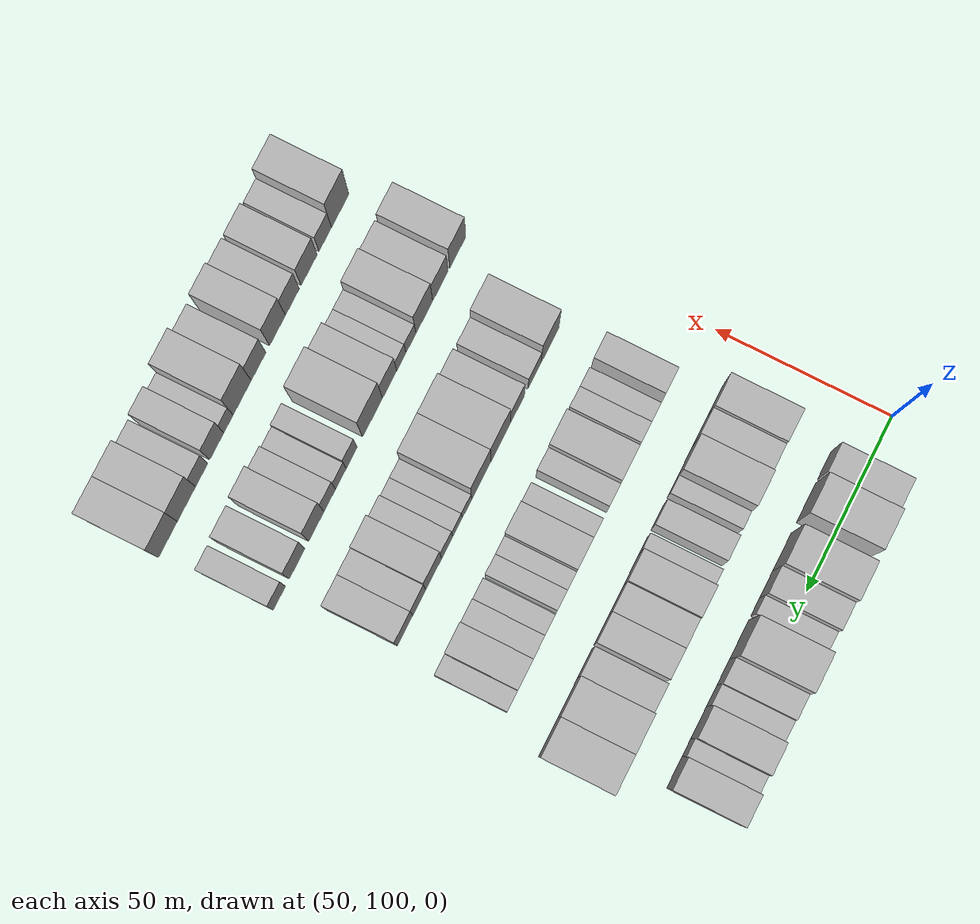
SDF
<sdf version="1.6">
 <world name="default">
  <model name="building_74">
   <static>1</static>
   <pose>50.0000 119.2671 0 0.000000 0.000000 0.000000</pose>
   <link name="link">
    <pose>0 0 9.00 0 0 0</pose>
    <collision name="collision"><geometry><box><size>20.0000 8.1622 18.0000</size></box></geometry></collision>
    <visual name="visual">
     <cast_shadows>0</cast_shadows>
     <geometry><box><size>20.0000 8.1622 18.0000</size></box></geometry>
     <material>
      <script>
       <uri>model://HANNAS_wall/materials/scripts</uri>
       <uri>model://HANNAS_wall/materials/textures</uri>
       <name>vrc/HANNAS_wall</name>
      </script>
     </material>
    </visual>
   </link>
  </model>
  <model name="building_75">
   <static>1</static>
   <pose>50.0000 129.8918 0 0.000000 0.000000 0.000000</pose>
   <link name="link">
    <pose>0 0 12.00 0 0 0</pose>
    <collision name="collision"><geometry><box><size>20.0000 11.0870 24.0000</size></box></geometry></collision>
    <visual name="visual">
     <cast_shadows>0</cast_shadows>
     <geometry><box><size>20.0000 11.0870 24.0000</size></box></geometry>
     <material>
      <script>
       <uri>model://HANNAS_wall/materials/scripts</uri>
       <uri>model://HANNAS_wall/materials/textures</uri>
       <name>vrc/HANNAS_wall</name>
      </script>
     </material>
    </visual>
   </link>
  </model>
  <model name="building_76">
   <static>1</static>
   <pose>50.0000 143.8152 0 0.000000 0.000000 0.000000</pose>
   <link name="link">
    <pose>0 0 12.00 0 0 0</pose>
    <collision name="collision"><geometry><box><size>20.0000 10.7599 24.0000</size></box></geometry></collision>
    <visual name="visual">
     <cast_shadows>0</cast_shadows>
     <geometry><box><size>20.0000 10.7599 24.0000</size></box></geometry>
     <material>
      <script>
       <uri>model://HANNAS_wall/materials/scripts</uri>
       <uri>model://HANNAS_wall/materials/textures</uri>
       <name>vrc/HANNAS_wall</name>
      </script>
     </material>
    </visual>
   </link>
  </model>
  <model name="building_77">
   <static>1</static>
   <pose>50.0000 153.0243 0 0.000000 0.000000 0.000000</pose>
   <link name="link">
    <pose>0 0 9.00 0 0 0</pose>
    <collision name="collision"><geometry><box><size>20.0000 7.6582 18.0000</size></box></geometry></collision>
    <visual name="visual">
     <cast_shadows>0</cast_shadows>
     <geometry><box><size>20.0000 7.6582 18.0000</size></box></geometry>
     <material>
      <script>
       <uri>model://HANNAS_wall/materials/scripts</uri>
       <uri>model://HANNAS_wall/materials/textures</uri>
       <name>vrc/HANNAS_wall</name>
      </script>
     </material>
    </visual>
   </link>
  </model>
  <model name="building_78">
   <static>1</static>
   <pose>50.0000 159.4226 0 0.000000 0.000000 0.000000</pose>
   <link name="link">
    <pose>0 0 6.00 0 0 0</pose>
    <collision name="collision"><geometry><box><size>20.0000 5.1386 12.0000</size></box></geometry></collision>
    <visual name="visual">
     <cast_shadows>0</cast_shadows>
     <geometry><box><size>20.0000 5.1386 12.0000</size></box></geometry>
     <material>
      <script>
       <uri>model://HANNAS_wall/materials/scripts</uri>
       <uri>model://HANNAS_wall/materials/textures</uri>
       <name>vrc/HANNAS_wall</name>
      </script>
     </material>
    </visual>
   </link>
  </model>
  <model name="building_79">
   <static>1</static>
   <pose>50.0000 168.5177 0 0.000000 0.000000 0.000000</pose>
   <link name="link">
    <pose>0 0 12.00 0 0 0</pose>
    <collision name="collision"><geometry><box><size>20.0000 11.0516 24.0000</size></box></geometry></collision>
    <visual name="visual">
     <cast_shadows>0</cast_shadows>
     <geometry><box><size>20.0000 11.0516 24.0000</size></box></geometry>
     <material>
      <script>
       <uri>model://HANNAS_wall/materials/scripts</uri>
       <uri>model://HANNAS_wall/materials/textures</uri>
       <name>vrc/HANNAS_wall</name>
      </script>
     </material>
    </visual>
   </link>
  </model>
  <model name="building_80">
   <static>1</static>
   <pose>50.0000 177.6352 0 0.000000 0.000000 0.000000</pose>
   <link name="link">
    <pose>0 0 7.50 0 0 0</pose>
    <collision name="collision"><geometry><box><size>20.0000 7.1833 15.0000</size></box></geometry></collision>
    <visual name="visual">
     <cast_shadows>0</cast_shadows>
     <geometry><box><size>20.0000 7.1833 15.0000</size></box></geometry>
     <material>
      <script>
       <uri>model://HANNAS_wall/materials/scripts</uri>
       <uri>model://HANNAS_wall/materials/textures</uri>
       <name>vrc/HANNAS_wall</name>
      </script>
     </material>
    </visual>
   </link>
  </model>
  <model name="building_81">
   <static>1</static>
   <pose>50.0000 184.1911 0 0.000000 0.000000 0.000000</pose>
   <link name="link">
    <pose>0 0 6.00 0 0 0</pose>
    <collision name="collision"><geometry><box><size>20.0000 5.9286 12.0000</size></box></geometry></collision>
    <visual name="visual">
     <cast_shadows>0</cast_shadows>
     <geometry><box><size>20.0000 5.9286 12.0000</size></box></geometry>
     <material>
      <script>
       <uri>model://HANNAS_wall/materials/scripts</uri>
       <uri>model://HANNAS_wall/materials/textures</uri>
       <name>vrc/HANNAS_wall</name>
      </script>
     </material>
    </visual>
   </link>
  </model>
  <model name="building_82">
   <static>1</static>
   <pose>50.0000 191.6227 0 0.000000 0.000000 0.000000</pose>
   <link name="link">
    <pose>0 0 9.00 0 0 0</pose>
    <collision name="collision"><geometry><box><size>20.0000 8.9345 18.0000</size></box></geometry></collision>
    <visual name="visual">
     <cast_shadows>0</cast_shadows>
     <geometry><box><size>20.0000 8.9345 18.0000</size></box></geometry>
     <material>
      <script>
       <uri>model://HANNAS_wall/materials/scripts</uri>
       <uri>model://HANNAS_wall/materials/textures</uri>
       <name>vrc/HANNAS_wall</name>
      </script>
     </material>
    </visual>
   </link>
  </model>
  <model name="building_83">
   <static>1</static>
   <pose>50.0000 198.5824 0 0.000000 0.000000 0.000000</pose>
   <link name="link">
    <pose>0 0 6.00 0 0 0</pose>
    <collision name="collision"><geometry><box><size>20.0000 4.9849 12.0000</size></box></geometry></collision>
    <visual name="visual">
     <cast_shadows>0</cast_shadows>
     <geometry><box><size>20.0000 4.9849 12.0000</size></box></geometry>
     <material>
      <script>
       <uri>model://HANNAS_wall/materials/scripts</uri>
       <uri>model://HANNAS_wall/materials/textures</uri>
       <name>vrc/HANNAS_wall</name>
      </script>
     </material>
    </visual>
   </link>
  </model>
  <model name="building_84">
   <static>1</static>
   <pose>50.0000 205.5064 0 0.000000 0.000000 0.000000</pose>
   <link name="link">
    <pose>0 0 9.00 0 0 0</pose>
    <collision name="collision"><geometry><box><size>20.0000 8.8631 18.0000</size></box></geometry></collision>
    <visual name="visual">
     <cast_shadows>0</cast_shadows>
     <geometry><box><size>20.0000 8.8631 18.0000</size></box></geometry>
     <material>
      <script>
       <uri>model://HANNAS_wall/materials/scripts</uri>
       <uri>model://HANNAS_wall/materials/textures</uri>
       <name>vrc/HANNAS_wall</name>
      </script>
     </material>
    </visual>
   </link>
  </model>
  <model name="building_194">
   <static>1</static>
   <pose>82.0000 117.0347 0 0.000000 0.000000 0.000000</pose>
   <link name="link">
    <pose>0 0 10.50 0 0 0</pose>
    <collision name="collision"><geometry><box><size>20.0000 9.2028 21.0000</size></box></geometry></collision>
    <visual name="visual">
     <cast_shadows>0</cast_shadows>
     <geometry><box><size>20.0000 9.2028 21.0000</size></box></geometry>
     <material>
      <script>
       <uri>model://HANNAS_wall/materials/scripts</uri>
       <uri>model://HANNAS_wall/materials/textures</uri>
       <name>vrc/HANNAS_wall</name>
      </script>
     </material>
    </visual>
   </link>
  </model>
  <model name="building_195">
   <static>1</static>
   <pose>82.0000 125.7514 0 0.000000 0.000000 0.000000</pose>
   <link name="link">
    <pose>0 0 9.00 0 0 0</pose>
    <collision name="collision"><geometry><box><size>20.0000 8.2307 18.0000</size></box></geometry></collision>
    <visual name="visual">
     <cast_shadows>0</cast_shadows>
     <geometry><box><size>20.0000 8.2307 18.0000</size></box></geometry>
     <material>
      <script>
       <uri>model://HANNAS_wall/materials/scripts</uri>
       <uri>model://HANNAS_wall/materials/textures</uri>
       <name>vrc/HANNAS_wall</name>
      </script>
     </material>
    </visual>
   </link>
  </model>
  <model name="building_196">
   <static>1</static>
   <pose>82.0000 134.7596 0 0.000000 0.000000 0.000000</pose>
   <link name="link">
    <pose>0 0 12.00 0 0 0</pose>
    <collision name="collision"><geometry><box><size>20.0000 9.7857 24.0000</size></box></geometry></collision>
    <visual name="visual">
     <cast_shadows>0</cast_shadows>
     <geometry><box><size>20.0000 9.7857 24.0000</size></box></geometry>
     <material>
      <script>
       <uri>model://HANNAS_wall/materials/scripts</uri>
       <uri>model://HANNAS_wall/materials/textures</uri>
       <name>vrc/HANNAS_wall</name>
      </script>
     </material>
    </visual>
   </link>
  </model>
  <model name="building_197">
   <static>1</static>
   <pose>82.0000 142.1499 0 0.000000 0.000000 0.000000</pose>
   <link name="link">
    <pose>0 0 6.00 0 0 0</pose>
    <collision name="collision"><geometry><box><size>20.0000 4.9949 12.0000</size></box></geometry></collision>
    <visual name="visual">
     <cast_shadows>0</cast_shadows>
     <geometry><box><size>20.0000 4.9949 12.0000</size></box></geometry>
     <material>
      <script>
       <uri>model://HANNAS_wall/materials/scripts</uri>
       <uri>model://HANNAS_wall/materials/textures</uri>
       <name>vrc/HANNAS_wall</name>
      </script>
     </material>
    </visual>
   </link>
  </model>
  <model name="building_198">
   <static>1</static>
   <pose>82.0000 150.2036 0 0.000000 0.000000 0.000000</pose>
   <link name="link">
    <pose>0 0 7.50 0 0 0</pose>
    <collision name="collision"><geometry><box><size>20.0000 7.1124 15.0000</size></box></geometry></collision>
    <visual name="visual">
     <cast_shadows>0</cast_shadows>
     <geometry><box><size>20.0000 7.1124 15.0000</size></box></geometry>
     <material>
      <script>
       <uri>model://HANNAS_wall/materials/scripts</uri>
       <uri>model://HANNAS_wall/materials/textures</uri>
       <name>vrc/HANNAS_wall</name>
      </script>
     </material>
    </visual>
   </link>
  </model>
  <model name="building_199">
   <static>1</static>
   <pose>82.0000 158.3337 0 0.000000 0.000000 0.000000</pose>
   <link name="link">
    <pose>0 0 6.00 0 0 0</pose>
    <collision name="collision"><geometry><box><size>20.0000 5.1479 12.0000</size></box></geometry></collision>
    <visual name="visual">
     <cast_shadows>0</cast_shadows>
     <geometry><box><size>20.0000 5.1479 12.0000</size></box></geometry>
     <material>
      <script>
       <uri>model://HANNAS_wall/materials/scripts</uri>
       <uri>model://HANNAS_wall/materials/textures</uri>
       <name>vrc/HANNAS_wall</name>
      </script>
     </material>
    </visual>
   </link>
  </model>
  <model name="building_200">
   <static>1</static>
   <pose>82.0000 165.2925 0 0.000000 0.000000 0.000000</pose>
   <link name="link">
    <pose>0 0 10.50 0 0 0</pose>
    <collision name="collision"><geometry><box><size>20.0000 8.7696 21.0000</size></box></geometry></collision>
    <visual name="visual">
     <cast_shadows>0</cast_shadows>
     <geometry><box><size>20.0000 8.7696 21.0000</size></box></geometry>
     <material>
      <script>
       <uri>model://HANNAS_wall/materials/scripts</uri>
       <uri>model://HANNAS_wall/materials/textures</uri>
       <name>vrc/HANNAS_wall</name>
      </script>
     </material>
    </visual>
   </link>
  </model>
  <model name="building_201">
   <static>1</static>
   <pose>82.0000 173.7266 0 0.000000 0.000000 0.000000</pose>
   <link name="link">
    <pose>0 0 9.00 0 0 0</pose>
    <collision name="collision"><geometry><box><size>20.0000 8.0988 18.0000</size></box></geometry></collision>
    <visual name="visual">
     <cast_shadows>0</cast_shadows>
     <geometry><box><size>20.0000 8.0988 18.0000</size></box></geometry>
     <material>
      <script>
       <uri>model://HANNAS_wall/materials/scripts</uri>
       <uri>model://HANNAS_wall/materials/textures</uri>
       <name>vrc/HANNAS_wall</name>
      </script>
     </material>
    </visual>
   </link>
  </model>
  <model name="building_202">
   <static>1</static>
   <pose>82.0000 182.0498 0 0.000000 0.000000 0.000000</pose>
   <link name="link">
    <pose>0 0 9.00 0 0 0</pose>
    <collision name="collision"><geometry><box><size>20.0000 8.5476 18.0000</size></box></geometry></collision>
    <visual name="visual">
     <cast_shadows>0</cast_shadows>
     <geometry><box><size>20.0000 8.5476 18.0000</size></box></geometry>
     <material>
      <script>
       <uri>model://HANNAS_wall/materials/scripts</uri>
       <uri>model://HANNAS_wall/materials/textures</uri>
       <name>vrc/HANNAS_wall</name>
      </script>
     </material>
    </visual>
   </link>
  </model>
  <model name="building_203">
   <static>1</static>
   <pose>82.0000 191.4114 0 0.000000 0.000000 0.000000</pose>
   <link name="link">
    <pose>0 0 9.00 0 0 0</pose>
    <collision name="collision"><geometry><box><size>20.0000 8.1756 18.0000</size></box></geometry></collision>
    <visual name="visual">
     <cast_shadows>0</cast_shadows>
     <geometry><box><size>20.0000 8.1756 18.0000</size></box></geometry>
     <material>
      <script>
       <uri>model://HANNAS_wall/materials/scripts</uri>
       <uri>model://HANNAS_wall/materials/textures</uri>
       <name>vrc/HANNAS_wall</name>
      </script>
     </material>
    </visual>
   </link>
  </model>
  <model name="building_204">
   <static>1</static>
   <pose>82.0000 200.9488 0 0.000000 0.000000 0.000000</pose>
   <link name="link">
    <pose>0 0 12.00 0 0 0</pose>
    <collision name="collision"><geometry><box><size>20.0000 10.8992 24.0000</size></box></geometry></collision>
    <visual name="visual">
     <cast_shadows>0</cast_shadows>
     <geometry><box><size>20.0000 10.8992 24.0000</size></box></geometry>
     <material>
      <script>
       <uri>model://HANNAS_wall/materials/scripts</uri>
       <uri>model://HANNAS_wall/materials/textures</uri>
       <name>vrc/HANNAS_wall</name>
      </script>
     </material>
    </visual>
   </link>
  </model>
  <model name="building_205">
   <static>1</static>
   <pose>82.0000 211.8389 0 0.000000 0.000000 0.000000</pose>
   <link name="link">
    <pose>0 0 12.00 0 0 0</pose>
    <collision name="collision"><geometry><box><size>20.0000 10.8809 24.0000</size></box></geometry></collision>
    <visual name="visual">
     <cast_shadows>0</cast_shadows>
     <geometry><box><size>20.0000 10.8809 24.0000</size></box></geometry>
     <material>
      <script>
       <uri>model://HANNAS_wall/materials/scripts</uri>
       <uri>model://HANNAS_wall/materials/textures</uri>
       <name>vrc/HANNAS_wall</name>
      </script>
     </material>
    </visual>
   </link>
  </model>
  <model name="building_312">
   <static>1</static>
   <pose>114.0000 119.5909 0 0.000000 0.000000 0.000000</pose>
   <link name="link">
    <pose>0 0 7.50 0 0 0</pose>
    <collision name="collision"><geometry><box><size>20.0000 7.3829 15.0000</size></box></geometry></collision>
    <visual name="visual">
     <cast_shadows>0</cast_shadows>
     <geometry><box><size>20.0000 7.3829 15.0000</size></box></geometry>
     <material>
      <script>
       <uri>model://HANNAS_wall/materials/scripts</uri>
       <uri>model://HANNAS_wall/materials/textures</uri>
       <name>vrc/HANNAS_wall</name>
      </script>
     </material>
    </visual>
   </link>
  </model>
  <model name="building_313">
   <static>1</static>
   <pose>114.0000 127.9925 0 0.000000 0.000000 0.000000</pose>
   <link name="link">
    <pose>0 0 6.00 0 0 0</pose>
    <collision name="collision"><geometry><box><size>20.0000 5.4204 12.0000</size></box></geometry></collision>
    <visual name="visual">
     <cast_shadows>0</cast_shadows>
     <geometry><box><size>20.0000 5.4204 12.0000</size></box></geometry>
     <material>
      <script>
       <uri>model://HANNAS_wall/materials/scripts</uri>
       <uri>model://HANNAS_wall/materials/textures</uri>
       <name>vrc/HANNAS_wall</name>
      </script>
     </material>
    </visual>
   </link>
  </model>
  <model name="building_314">
   <static>1</static>
   <pose>114.0000 133.6456 0 0.000000 0.000000 0.000000</pose>
   <link name="link">
    <pose>0 0 6.00 0 0 0</pose>
    <collision name="collision"><geometry><box><size>20.0000 5.8856 12.0000</size></box></geometry></collision>
    <visual name="visual">
     <cast_shadows>0</cast_shadows>
     <geometry><box><size>20.0000 5.8856 12.0000</size></box></geometry>
     <material>
      <script>
       <uri>model://HANNAS_wall/materials/scripts</uri>
       <uri>model://HANNAS_wall/materials/textures</uri>
       <name>vrc/HANNAS_wall</name>
      </script>
     </material>
    </visual>
   </link>
  </model>
  <model name="building_315">
   <static>1</static>
   <pose>114.0000 143.5007 0 0.000000 0.000000 0.000000</pose>
   <link name="link">
    <pose>0 0 10.50 0 0 0</pose>
    <collision name="collision"><geometry><box><size>20.0000 9.8246 21.0000</size></box></geometry></collision>
    <visual name="visual">
     <cast_shadows>0</cast_shadows>
     <geometry><box><size>20.0000 9.8246 21.0000</size></box></geometry>
     <material>
      <script>
       <uri>model://HANNAS_wall/materials/scripts</uri>
       <uri>model://HANNAS_wall/materials/textures</uri>
       <name>vrc/HANNAS_wall</name>
      </script>
     </material>
    </visual>
   </link>
  </model>
  <model name="building_316">
   <static>1</static>
   <pose>114.0000 151.5953 0 0.000000 0.000000 0.000000</pose>
   <link name="link">
    <pose>0 0 7.50 0 0 0</pose>
    <collision name="collision"><geometry><box><size>20.0000 6.3647 15.0000</size></box></geometry></collision>
    <visual name="visual">
     <cast_shadows>0</cast_shadows>
     <geometry><box><size>20.0000 6.3647 15.0000</size></box></geometry>
     <material>
      <script>
       <uri>model://HANNAS_wall/materials/scripts</uri>
       <uri>model://HANNAS_wall/materials/textures</uri>
       <name>vrc/HANNAS_wall</name>
      </script>
     </material>
    </visual>
   </link>
  </model>
  <model name="building_317">
   <static>1</static>
   <pose>114.0000 160.7396 0 0.000000 0.000000 0.000000</pose>
   <link name="link">
    <pose>0 0 6.00 0 0 0</pose>
    <collision name="collision"><geometry><box><size>20.0000 5.9240 12.0000</size></box></geometry></collision>
    <visual name="visual">
     <cast_shadows>0</cast_shadows>
     <geometry><box><size>20.0000 5.9240 12.0000</size></box></geometry>
     <material>
      <script>
       <uri>model://HANNAS_wall/materials/scripts</uri>
       <uri>model://HANNAS_wall/materials/textures</uri>
       <name>vrc/HANNAS_wall</name>
      </script>
     </material>
    </visual>
   </link>
  </model>
  <model name="building_318">
   <static>1</static>
   <pose>114.0000 168.1258 0 0.000000 0.000000 0.000000</pose>
   <link name="link">
    <pose>0 0 9.00 0 0 0</pose>
    <collision name="collision"><geometry><box><size>20.0000 8.8484 18.0000</size></box></geometry></collision>
    <visual name="visual">
     <cast_shadows>0</cast_shadows>
     <geometry><box><size>20.0000 8.8484 18.0000</size></box></geometry>
     <material>
      <script>
       <uri>model://HANNAS_wall/materials/scripts</uri>
       <uri>model://HANNAS_wall/materials/textures</uri>
       <name>vrc/HANNAS_wall</name>
      </script>
     </material>
    </visual>
   </link>
  </model>
  <model name="building_319">
   <static>1</static>
   <pose>114.0000 175.0863 0 0.000000 0.000000 0.000000</pose>
   <link name="link">
    <pose>0 0 6.00 0 0 0</pose>
    <collision name="collision"><geometry><box><size>20.0000 5.0725 12.0000</size></box></geometry></collision>
    <visual name="visual">
     <cast_shadows>0</cast_shadows>
     <geometry><box><size>20.0000 5.0725 12.0000</size></box></geometry>
     <material>
      <script>
       <uri>model://HANNAS_wall/materials/scripts</uri>
       <uri>model://HANNAS_wall/materials/textures</uri>
       <name>vrc/HANNAS_wall</name>
      </script>
     </material>
    </visual>
   </link>
  </model>
  <model name="building_320">
   <static>1</static>
   <pose>114.0000 180.4774 0 0.000000 0.000000 0.000000</pose>
   <link name="link">
    <pose>0 0 6.00 0 0 0</pose>
    <collision name="collision"><geometry><box><size>20.0000 5.7096 12.0000</size></box></geometry></collision>
    <visual name="visual">
     <cast_shadows>0</cast_shadows>
     <geometry><box><size>20.0000 5.7096 12.0000</size></box></geometry>
     <material>
      <script>
       <uri>model://HANNAS_wall/materials/scripts</uri>
       <uri>model://HANNAS_wall/materials/textures</uri>
       <name>vrc/HANNAS_wall</name>
      </script>
     </material>
    </visual>
   </link>
  </model>
  <model name="building_321">
   <static>1</static>
   <pose>114.0000 187.3006 0 0.000000 0.000000 0.000000</pose>
   <link name="link">
    <pose>0 0 6.00 0 0 0</pose>
    <collision name="collision"><geometry><box><size>20.0000 5.9369 12.0000</size></box></geometry></collision>
    <visual name="visual">
     <cast_shadows>0</cast_shadows>
     <geometry><box><size>20.0000 5.9369 12.0000</size></box></geometry>
     <material>
      <script>
       <uri>model://HANNAS_wall/materials/scripts</uri>
       <uri>model://HANNAS_wall/materials/textures</uri>
       <name>vrc/HANNAS_wall</name>
      </script>
     </material>
    </visual>
   </link>
  </model>
  <model name="building_322">
   <static>1</static>
   <pose>114.0000 193.5225 0 0.000000 0.000000 0.000000</pose>
   <link name="link">
    <pose>0 0 7.50 0 0 0</pose>
    <collision name="collision"><geometry><box><size>20.0000 6.5070 15.0000</size></box></geometry></collision>
    <visual name="visual">
     <cast_shadows>0</cast_shadows>
     <geometry><box><size>20.0000 6.5070 15.0000</size></box></geometry>
     <material>
      <script>
       <uri>model://HANNAS_wall/materials/scripts</uri>
       <uri>model://HANNAS_wall/materials/textures</uri>
       <name>vrc/HANNAS_wall</name>
      </script>
     </material>
    </visual>
   </link>
  </model>
  <model name="building_323">
   <static>1</static>
   <pose>114.0000 201.0260 0 0.000000 0.000000 0.000000</pose>
   <link name="link">
    <pose>0 0 9.00 0 0 0</pose>
    <collision name="collision"><geometry><box><size>20.0000 8.4999 18.0000</size></box></geometry></collision>
    <visual name="visual">
     <cast_shadows>0</cast_shadows>
     <geometry><box><size>20.0000 8.4999 18.0000</size></box></geometry>
     <material>
      <script>
       <uri>model://HANNAS_wall/materials/scripts</uri>
       <uri>model://HANNAS_wall/materials/textures</uri>
       <name>vrc/HANNAS_wall</name>
      </script>
     </material>
    </visual>
   </link>
  </model>
  <model name="building_324">
   <static>1</static>
   <pose>114.0000 208.1723 0 0.000000 0.000000 0.000000</pose>
   <link name="link">
    <pose>0 0 6.00 0 0 0</pose>
    <collision name="collision"><geometry><box><size>20.0000 5.7928 12.0000</size></box></geometry></collision>
    <visual name="visual">
     <cast_shadows>0</cast_shadows>
     <geometry><box><size>20.0000 5.7928 12.0000</size></box></geometry>
     <material>
      <script>
       <uri>model://HANNAS_wall/materials/scripts</uri>
       <uri>model://HANNAS_wall/materials/textures</uri>
       <name>vrc/HANNAS_wall</name>
      </script>
     </material>
    </visual>
   </link>
  </model>
  <model name="building_436">
   <static>1</static>
   <pose>146.0000 122.8932 0 0.000000 0.000000 0.000000</pose>
   <link name="link">
    <pose>0 0 12.00 0 0 0</pose>
    <collision name="collision"><geometry><box><size>20.0000 10.1082 24.0000</size></box></geometry></collision>
    <visual name="visual">
     <cast_shadows>0</cast_shadows>
     <geometry><box><size>20.0000 10.1082 24.0000</size></box></geometry>
     <material>
      <script>
       <uri>model://HANNAS_wall/materials/scripts</uri>
       <uri>model://HANNAS_wall/materials/textures</uri>
       <name>vrc/HANNAS_wall</name>
      </script>
     </material>
    </visual>
   </link>
  </model>
  <model name="building_437">
   <static>1</static>
   <pose>146.0000 131.6945 0 0.000000 0.000000 0.000000</pose>
   <link name="link">
    <pose>0 0 7.50 0 0 0</pose>
    <collision name="collision"><geometry><box><size>20.0000 7.4946 15.0000</size></box></geometry></collision>
    <visual name="visual">
     <cast_shadows>0</cast_shadows>
     <geometry><box><size>20.0000 7.4946 15.0000</size></box></geometry>
     <material>
      <script>
       <uri>model://HANNAS_wall/materials/scripts</uri>
       <uri>model://HANNAS_wall/materials/textures</uri>
       <name>vrc/HANNAS_wall</name>
      </script>
     </material>
    </visual>
   </link>
  </model>
  <model name="building_438">
   <static>1</static>
   <pose>146.0000 141.4306 0 0.000000 0.000000 0.000000</pose>
   <link name="link">
    <pose>0 0 9.00 0 0 0</pose>
    <collision name="collision"><geometry><box><size>20.0000 7.9776 18.0000</size></box></geometry></collision>
    <visual name="visual">
     <cast_shadows>0</cast_shadows>
     <geometry><box><size>20.0000 7.9776 18.0000</size></box></geometry>
     <material>
      <script>
       <uri>model://HANNAS_wall/materials/scripts</uri>
       <uri>model://HANNAS_wall/materials/textures</uri>
       <name>vrc/HANNAS_wall</name>
      </script>
     </material>
    </visual>
   </link>
  </model>
  <model name="building_439">
   <static>1</static>
   <pose>146.0000 150.9190 0 0.000000 0.000000 0.000000</pose>
   <link name="link">
    <pose>0 0 12.00 0 0 0</pose>
    <collision name="collision"><geometry><box><size>20.0000 10.9992 24.0000</size></box></geometry></collision>
    <visual name="visual">
     <cast_shadows>0</cast_shadows>
     <geometry><box><size>20.0000 10.9992 24.0000</size></box></geometry>
     <material>
      <script>
       <uri>model://HANNAS_wall/materials/scripts</uri>
       <uri>model://HANNAS_wall/materials/textures</uri>
       <name>vrc/HANNAS_wall</name>
      </script>
     </material>
    </visual>
   </link>
  </model>
  <model name="building_440">
   <static>1</static>
   <pose>146.0000 161.7993 0 0.000000 0.000000 0.000000</pose>
   <link name="link">
    <pose>0 0 12.00 0 0 0</pose>
    <collision name="collision"><geometry><box><size>20.0000 10.7614 24.0000</size></box></geometry></collision>
    <visual name="visual">
     <cast_shadows>0</cast_shadows>
     <geometry><box><size>20.0000 10.7614 24.0000</size></box></geometry>
     <material>
      <script>
       <uri>model://HANNAS_wall/materials/scripts</uri>
       <uri>model://HANNAS_wall/materials/textures</uri>
       <name>vrc/HANNAS_wall</name>
      </script>
     </material>
    </visual>
   </link>
  </model>
  <model name="building_441">
   <static>1</static>
   <pose>146.0000 169.8562 0 0.000000 0.000000 0.000000</pose>
   <link name="link">
    <pose>0 0 6.00 0 0 0</pose>
    <collision name="collision"><geometry><box><size>20.0000 5.3524 12.0000</size></box></geometry></collision>
    <visual name="visual">
     <cast_shadows>0</cast_shadows>
     <geometry><box><size>20.0000 5.3524 12.0000</size></box></geometry>
     <material>
      <script>
       <uri>model://HANNAS_wall/materials/scripts</uri>
       <uri>model://HANNAS_wall/materials/textures</uri>
       <name>vrc/HANNAS_wall</name>
      </script>
     </material>
    </visual>
   </link>
  </model>
  <model name="building_442">
   <static>1</static>
   <pose>146.0000 175.1589 0 0.000000 0.000000 0.000000</pose>
   <link name="link">
    <pose>0 0 6.00 0 0 0</pose>
    <collision name="collision"><geometry><box><size>20.0000 5.2529 12.0000</size></box></geometry></collision>
    <visual name="visual">
     <cast_shadows>0</cast_shadows>
     <geometry><box><size>20.0000 5.2529 12.0000</size></box></geometry>
     <material>
      <script>
       <uri>model://HANNAS_wall/materials/scripts</uri>
       <uri>model://HANNAS_wall/materials/textures</uri>
       <name>vrc/HANNAS_wall</name>
      </script>
     </material>
    </visual>
   </link>
  </model>
  <model name="building_443">
   <static>1</static>
   <pose>146.0000 180.8792 0 0.000000 0.000000 0.000000</pose>
   <link name="link">
    <pose>0 0 7.50 0 0 0</pose>
    <collision name="collision"><geometry><box><size>20.0000 6.1877 15.0000</size></box></geometry></collision>
    <visual name="visual">
     <cast_shadows>0</cast_shadows>
     <geometry><box><size>20.0000 6.1877 15.0000</size></box></geometry>
     <material>
      <script>
       <uri>model://HANNAS_wall/materials/scripts</uri>
       <uri>model://HANNAS_wall/materials/textures</uri>
       <name>vrc/HANNAS_wall</name>
      </script>
     </material>
    </visual>
   </link>
  </model>
  <model name="building_444">
   <static>1</static>
   <pose>146.0000 188.3653 0 0.000000 0.000000 0.000000</pose>
   <link name="link">
    <pose>0 0 10.50 0 0 0</pose>
    <collision name="collision"><geometry><box><size>20.0000 8.7845 21.0000</size></box></geometry></collision>
    <visual name="visual">
     <cast_shadows>0</cast_shadows>
     <geometry><box><size>20.0000 8.7845 21.0000</size></box></geometry>
     <material>
      <script>
       <uri>model://HANNAS_wall/materials/scripts</uri>
       <uri>model://HANNAS_wall/materials/textures</uri>
       <name>vrc/HANNAS_wall</name>
      </script>
     </material>
    </visual>
   </link>
  </model>
  <model name="building_445">
   <static>1</static>
   <pose>146.0000 196.3861 0 0.000000 0.000000 0.000000</pose>
   <link name="link">
    <pose>0 0 9.00 0 0 0</pose>
    <collision name="collision"><geometry><box><size>20.0000 7.2571 18.0000</size></box></geometry></collision>
    <visual name="visual">
     <cast_shadows>0</cast_shadows>
     <geometry><box><size>20.0000 7.2571 18.0000</size></box></geometry>
     <material>
      <script>
       <uri>model://HANNAS_wall/materials/scripts</uri>
       <uri>model://HANNAS_wall/materials/textures</uri>
       <name>vrc/HANNAS_wall</name>
      </script>
     </material>
    </visual>
   </link>
  </model>
  <model name="building_446">
   <static>1</static>
   <pose>146.0000 204.2907 0 0.000000 0.000000 0.000000</pose>
   <link name="link">
    <pose>0 0 9.00 0 0 0</pose>
    <collision name="collision"><geometry><box><size>20.0000 8.5520 18.0000</size></box></geometry></collision>
    <visual name="visual">
     <cast_shadows>0</cast_shadows>
     <geometry><box><size>20.0000 8.5520 18.0000</size></box></geometry>
     <material>
      <script>
       <uri>model://HANNAS_wall/materials/scripts</uri>
       <uri>model://HANNAS_wall/materials/textures</uri>
       <name>vrc/HANNAS_wall</name>
      </script>
     </material>
    </visual>
   </link>
  </model>
  <model name="building_552">
   <static>1</static>
   <pose>178.0000 111.7583 0 0.000000 0.000000 0.000000</pose>
   <link name="link">
    <pose>0 0 10.50 0 0 0</pose>
    <collision name="collision"><geometry><box><size>20.0000 9.0880 21.0000</size></box></geometry></collision>
    <visual name="visual">
     <cast_shadows>0</cast_shadows>
     <geometry><box><size>20.0000 9.0880 21.0000</size></box></geometry>
     <material>
      <script>
       <uri>model://HANNAS_wall/materials/scripts</uri>
       <uri>model://HANNAS_wall/materials/textures</uri>
       <name>vrc/HANNAS_wall</name>
      </script>
     </material>
    </visual>
   </link>
  </model>
  <model name="building_553">
   <static>1</static>
   <pose>178.0000 121.6298 0 0.000000 0.000000 0.000000</pose>
   <link name="link">
    <pose>0 0 9.00 0 0 0</pose>
    <collision name="collision"><geometry><box><size>20.0000 8.6550 18.0000</size></box></geometry></collision>
    <visual name="visual">
     <cast_shadows>0</cast_shadows>
     <geometry><box><size>20.0000 8.6550 18.0000</size></box></geometry>
     <material>
      <script>
       <uri>model://HANNAS_wall/materials/scripts</uri>
       <uri>model://HANNAS_wall/materials/textures</uri>
       <name>vrc/HANNAS_wall</name>
      </script>
     </material>
    </visual>
   </link>
  </model>
  <model name="building_554">
   <static>1</static>
   <pose>178.0000 130.6670 0 0.000000 0.000000 0.000000</pose>
   <link name="link">
    <pose>0 0 10.50 0 0 0</pose>
    <collision name="collision"><geometry><box><size>20.0000 9.4196 21.0000</size></box></geometry></collision>
    <visual name="visual">
     <cast_shadows>0</cast_shadows>
     <geometry><box><size>20.0000 9.4196 21.0000</size></box></geometry>
     <material>
      <script>
       <uri>model://HANNAS_wall/materials/scripts</uri>
       <uri>model://HANNAS_wall/materials/textures</uri>
       <name>vrc/HANNAS_wall</name>
      </script>
     </material>
    </visual>
   </link>
  </model>
  <model name="building_555">
   <static>1</static>
   <pose>178.0000 138.2073 0 0.000000 0.000000 0.000000</pose>
   <link name="link">
    <pose>0 0 6.00 0 0 0</pose>
    <collision name="collision"><geometry><box><size>20.0000 5.6610 12.0000</size></box></geometry></collision>
    <visual name="visual">
     <cast_shadows>0</cast_shadows>
     <geometry><box><size>20.0000 5.6610 12.0000</size></box></geometry>
     <material>
      <script>
       <uri>model://HANNAS_wall/materials/scripts</uri>
       <uri>model://HANNAS_wall/materials/textures</uri>
       <name>vrc/HANNAS_wall</name>
      </script>
     </material>
    </visual>
   </link>
  </model>
  <model name="building_556">
   <static>1</static>
   <pose>178.0000 143.6179 0 0.000000 0.000000 0.000000</pose>
   <link name="link">
    <pose>0 0 6.00 0 0 0</pose>
    <collision name="collision"><geometry><box><size>20.0000 5.1600 12.0000</size></box></geometry></collision>
    <visual name="visual">
     <cast_shadows>0</cast_shadows>
     <geometry><box><size>20.0000 5.1600 12.0000</size></box></geometry>
     <material>
      <script>
       <uri>model://HANNAS_wall/materials/scripts</uri>
       <uri>model://HANNAS_wall/materials/textures</uri>
       <name>vrc/HANNAS_wall</name>
      </script>
     </material>
    </visual>
   </link>
  </model>
  <model name="building_557">
   <static>1</static>
   <pose>178.0000 150.2033 0 0.000000 0.000000 0.000000</pose>
   <link name="link">
    <pose>0 0 9.00 0 0 0</pose>
    <collision name="collision"><geometry><box><size>20.0000 8.0109 18.0000</size></box></geometry></collision>
    <visual name="visual">
     <cast_shadows>0</cast_shadows>
     <geometry><box><size>20.0000 8.0109 18.0000</size></box></geometry>
     <material>
      <script>
       <uri>model://HANNAS_wall/materials/scripts</uri>
       <uri>model://HANNAS_wall/materials/textures</uri>
       <name>vrc/HANNAS_wall</name>
      </script>
     </material>
    </visual>
   </link>
  </model>
  <model name="building_558">
   <static>1</static>
   <pose>178.0000 159.7441 0 0.000000 0.000000 0.000000</pose>
   <link name="link">
    <pose>0 0 12.00 0 0 0</pose>
    <collision name="collision"><geometry><box><size>20.0000 11.0706 24.0000</size></box></geometry></collision>
    <visual name="visual">
     <cast_shadows>0</cast_shadows>
     <geometry><box><size>20.0000 11.0706 24.0000</size></box></geometry>
     <material>
      <script>
       <uri>model://HANNAS_wall/materials/scripts</uri>
       <uri>model://HANNAS_wall/materials/textures</uri>
       <name>vrc/HANNAS_wall</name>
      </script>
     </material>
    </visual>
   </link>
  </model>
  <model name="building_559">
   <static>1</static>
   <pose>178.0000 171.3127 0 0.000000 0.000000 0.000000</pose>
   <link name="link">
    <pose>0 0 7.50 0 0 0</pose>
    <collision name="collision"><geometry><box><size>20.0000 6.0667 15.0000</size></box></geometry></collision>
    <visual name="visual">
     <cast_shadows>0</cast_shadows>
     <geometry><box><size>20.0000 6.0667 15.0000</size></box></geometry>
     <material>
      <script>
       <uri>model://HANNAS_wall/materials/scripts</uri>
       <uri>model://HANNAS_wall/materials/textures</uri>
       <name>vrc/HANNAS_wall</name>
      </script>
     </material>
    </visual>
   </link>
  </model>
  <model name="building_560">
   <static>1</static>
   <pose>178.0000 177.2968 0 0.000000 0.000000 0.000000</pose>
   <link name="link">
    <pose>0 0 6.00 0 0 0</pose>
    <collision name="collision"><geometry><box><size>20.0000 5.9014 12.0000</size></box></geometry></collision>
    <visual name="visual">
     <cast_shadows>0</cast_shadows>
     <geometry><box><size>20.0000 5.9014 12.0000</size></box></geometry>
     <material>
      <script>
       <uri>model://HANNAS_wall/materials/scripts</uri>
       <uri>model://HANNAS_wall/materials/textures</uri>
       <name>vrc/HANNAS_wall</name>
      </script>
     </material>
    </visual>
   </link>
  </model>
  <model name="building_561">
   <static>1</static>
   <pose>178.0000 183.4788 0 0.000000 0.000000 0.000000</pose>
   <link name="link">
    <pose>0 0 7.50 0 0 0</pose>
    <collision name="collision"><geometry><box><size>20.0000 6.4626 15.0000</size></box></geometry></collision>
    <visual name="visual">
     <cast_shadows>0</cast_shadows>
     <geometry><box><size>20.0000 6.4626 15.0000</size></box></geometry>
     <material>
      <script>
       <uri>model://HANNAS_wall/materials/scripts</uri>
       <uri>model://HANNAS_wall/materials/textures</uri>
       <name>vrc/HANNAS_wall</name>
      </script>
     </material>
    </visual>
   </link>
  </model>
  <model name="building_562">
   <static>1</static>
   <pose>178.0000 190.9362 0 0.000000 0.000000 0.000000</pose>
   <link name="link">
    <pose>0 0 10.50 0 0 0</pose>
    <collision name="collision"><geometry><box><size>20.0000 8.4522 21.0000</size></box></geometry></collision>
    <visual name="visual">
     <cast_shadows>0</cast_shadows>
     <geometry><box><size>20.0000 8.4522 21.0000</size></box></geometry>
     <material>
      <script>
       <uri>model://HANNAS_wall/materials/scripts</uri>
       <uri>model://HANNAS_wall/materials/textures</uri>
       <name>vrc/HANNAS_wall</name>
      </script>
     </material>
    </visual>
   </link>
  </model>
  <model name="building_563">
   <static>1</static>
   <pose>178.0000 201.4929 0 0.000000 0.000000 0.000000</pose>
   <link name="link">
    <pose>0 0 9.00 0 0 0</pose>
    <collision name="collision"><geometry><box><size>20.0000 8.6613 18.0000</size></box></geometry></collision>
    <visual name="visual">
     <cast_shadows>0</cast_shadows>
     <geometry><box><size>20.0000 8.6613 18.0000</size></box></geometry>
     <material>
      <script>
       <uri>model://HANNAS_wall/materials/scripts</uri>
       <uri>model://HANNAS_wall/materials/textures</uri>
       <name>vrc/HANNAS_wall</name>
      </script>
     </material>
    </visual>
   </link>
  </model>
  <model name="building_564">
   <static>1</static>
   <pose>178.0000 211.2074 0 0.000000 0.000000 0.000000</pose>
   <link name="link">
    <pose>0 0 7.50 0 0 0</pose>
    <collision name="collision"><geometry><box><size>20.0000 6.7678 15.0000</size></box></geometry></collision>
    <visual name="visual">
     <cast_shadows>0</cast_shadows>
     <geometry><box><size>20.0000 6.7678 15.0000</size></box></geometry>
     <material>
      <script>
       <uri>model://HANNAS_wall/materials/scripts</uri>
       <uri>model://HANNAS_wall/materials/textures</uri>
       <name>vrc/HANNAS_wall</name>
      </script>
     </material>
    </visual>
   </link>
  </model>
  <model name="building_673">
   <static>1</static>
   <pose>210.0000 115.5883 0 0.000000 0.000000 0.000000</pose>
   <link name="link">
    <pose>0 0 12.00 0 0 0</pose>
    <collision name="collision"><geometry><box><size>20.0000 9.8421 24.0000</size></box></geometry></collision>
    <visual name="visual">
     <cast_shadows>0</cast_shadows>
     <geometry><box><size>20.0000 9.8421 24.0000</size></box></geometry>
     <material>
      <script>
       <uri>model://HANNAS_wall/materials/scripts</uri>
       <uri>model://HANNAS_wall/materials/textures</uri>
       <name>vrc/HANNAS_wall</name>
      </script>
     </material>
    </visual>
   </link>
  </model>
  <model name="building_674">
   <static>1</static>
   <pose>210.0000 123.9957 0 0.000000 0.000000 0.000000</pose>
   <link name="link">
    <pose>0 0 7.50 0 0 0</pose>
    <collision name="collision"><geometry><box><size>20.0000 6.9727 15.0000</size></box></geometry></collision>
    <visual name="visual">
     <cast_shadows>0</cast_shadows>
     <geometry><box><size>20.0000 6.9727 15.0000</size></box></geometry>
     <material>
      <script>
       <uri>model://HANNAS_wall/materials/scripts</uri>
       <uri>model://HANNAS_wall/materials/textures</uri>
       <name>vrc/HANNAS_wall</name>
      </script>
     </material>
    </visual>
   </link>
  </model>
  <model name="building_675">
   <static>1</static>
   <pose>210.0000 132.9604 0 0.000000 0.000000 0.000000</pose>
   <link name="link">
    <pose>0 0 9.00 0 0 0</pose>
    <collision name="collision"><geometry><box><size>20.0000 8.9568 18.0000</size></box></geometry></collision>
    <visual name="visual">
     <cast_shadows>0</cast_shadows>
     <geometry><box><size>20.0000 8.9568 18.0000</size></box></geometry>
     <material>
      <script>
       <uri>model://HANNAS_wall/materials/scripts</uri>
       <uri>model://HANNAS_wall/materials/textures</uri>
       <name>vrc/HANNAS_wall</name>
      </script>
     </material>
    </visual>
   </link>
  </model>
  <model name="building_676">
   <static>1</static>
   <pose>210.0000 142.3103 0 0.000000 0.000000 0.000000</pose>
   <link name="link">
    <pose>0 0 9.00 0 0 0</pose>
    <collision name="collision"><geometry><box><size>20.0000 7.7430 18.0000</size></box></geometry></collision>
    <visual name="visual">
     <cast_shadows>0</cast_shadows>
     <geometry><box><size>20.0000 7.7430 18.0000</size></box></geometry>
     <material>
      <script>
       <uri>model://HANNAS_wall/materials/scripts</uri>
       <uri>model://HANNAS_wall/materials/textures</uri>
       <name>vrc/HANNAS_wall</name>
      </script>
     </material>
    </visual>
   </link>
  </model>
  <model name="building_677">
   <static>1</static>
   <pose>210.0000 150.5938 0 0.000000 0.000000 0.000000</pose>
   <link name="link">
    <pose>0 0 10.50 0 0 0</pose>
    <collision name="collision"><geometry><box><size>20.0000 8.8239 21.0000</size></box></geometry></collision>
    <visual name="visual">
     <cast_shadows>0</cast_shadows>
     <geometry><box><size>20.0000 8.8239 21.0000</size></box></geometry>
     <material>
      <script>
       <uri>model://HANNAS_wall/materials/scripts</uri>
       <uri>model://HANNAS_wall/materials/textures</uri>
       <name>vrc/HANNAS_wall</name>
      </script>
     </material>
    </visual>
   </link>
  </model>
  <model name="building_678">
   <static>1</static>
   <pose>210.0000 161.0636 0 0.000000 0.000000 0.000000</pose>
   <link name="link">
    <pose>0 0 9.00 0 0 0</pose>
    <collision name="collision"><geometry><box><size>20.0000 8.1156 18.0000</size></box></geometry></collision>
    <visual name="visual">
     <cast_shadows>0</cast_shadows>
     <geometry><box><size>20.0000 8.1156 18.0000</size></box></geometry>
     <material>
      <script>
       <uri>model://HANNAS_wall/materials/scripts</uri>
       <uri>model://HANNAS_wall/materials/textures</uri>
       <name>vrc/HANNAS_wall</name>
      </script>
     </material>
    </visual>
   </link>
  </model>
  <model name="building_679">
   <static>1</static>
   <pose>210.0000 170.1136 0 0.000000 0.000000 0.000000</pose>
   <link name="link">
    <pose>0 0 12.00 0 0 0</pose>
    <collision name="collision"><geometry><box><size>20.0000 9.9845 24.0000</size></box></geometry></collision>
    <visual name="visual">
     <cast_shadows>0</cast_shadows>
     <geometry><box><size>20.0000 9.9845 24.0000</size></box></geometry>
     <material>
      <script>
       <uri>model://HANNAS_wall/materials/scripts</uri>
       <uri>model://HANNAS_wall/materials/textures</uri>
       <name>vrc/HANNAS_wall</name>
      </script>
     </material>
    </visual>
   </link>
  </model>
  <model name="building_680">
   <static>1</static>
   <pose>210.0000 177.6560 0 0.000000 0.000000 0.000000</pose>
   <link name="link">
    <pose>0 0 6.00 0 0 0</pose>
    <collision name="collision"><geometry><box><size>20.0000 5.1003 12.0000</size></box></geometry></collision>
    <visual name="visual">
     <cast_shadows>0</cast_shadows>
     <geometry><box><size>20.0000 5.1003 12.0000</size></box></geometry>
     <material>
      <script>
       <uri>model://HANNAS_wall/materials/scripts</uri>
       <uri>model://HANNAS_wall/materials/textures</uri>
       <name>vrc/HANNAS_wall</name>
      </script>
     </material>
    </visual>
   </link>
  </model>
  <model name="building_681">
   <static>1</static>
   <pose>210.0000 184.0956 0 0.000000 0.000000 0.000000</pose>
   <link name="link">
    <pose>0 0 9.00 0 0 0</pose>
    <collision name="collision"><geometry><box><size>20.0000 7.7789 18.0000</size></box></geometry></collision>
    <visual name="visual">
     <cast_shadows>0</cast_shadows>
     <geometry><box><size>20.0000 7.7789 18.0000</size></box></geometry>
     <material>
      <script>
       <uri>model://HANNAS_wall/materials/scripts</uri>
       <uri>model://HANNAS_wall/materials/textures</uri>
       <name>vrc/HANNAS_wall</name>
      </script>
     </material>
    </visual>
   </link>
  </model>
  <model name="building_682">
   <static>1</static>
   <pose>210.0000 192.3197 0 0.000000 0.000000 0.000000</pose>
   <link name="link">
    <pose>0 0 7.50 0 0 0</pose>
    <collision name="collision"><geometry><box><size>20.0000 6.6694 15.0000</size></box></geometry></collision>
    <visual name="visual">
     <cast_shadows>0</cast_shadows>
     <geometry><box><size>20.0000 6.6694 15.0000</size></box></geometry>
     <material>
      <script>
       <uri>model://HANNAS_wall/materials/scripts</uri>
       <uri>model://HANNAS_wall/materials/textures</uri>
       <name>vrc/HANNAS_wall</name>
      </script>
     </material>
    </visual>
   </link>
  </model>
  <model name="building_683">
   <static>1</static>
   <pose>210.0000 200.6028 0 0.000000 0.000000 0.000000</pose>
   <link name="link">
    <pose>0 0 10.50 0 0 0</pose>
    <collision name="collision"><geometry><box><size>20.0000 9.8968 21.0000</size></box></geometry></collision>
    <visual name="visual">
     <cast_shadows>0</cast_shadows>
     <geometry><box><size>20.0000 9.8968 21.0000</size></box></geometry>
     <material>
      <script>
       <uri>model://HANNAS_wall/materials/scripts</uri>
       <uri>model://HANNAS_wall/materials/textures</uri>
       <name>vrc/HANNAS_wall</name>
      </script>
     </material>
    </visual>
   </link>
  </model>
  <model name="building_684">
   <static>1</static>
   <pose>210.0000 210.6849 0 0.000000 0.000000 0.000000</pose>
   <link name="link">
    <pose>0 0 10.50 0 0 0</pose>
    <collision name="collision"><geometry><box><size>20.0000 10.2674 21.0000</size></box></geometry></collision>
    <visual name="visual">
     <cast_shadows>0</cast_shadows>
     <geometry><box><size>20.0000 10.2674 21.0000</size></box></geometry>
     <material>
      <script>
       <uri>model://HANNAS_wall/materials/scripts</uri>
       <uri>model://HANNAS_wall/materials/textures</uri>
       <name>vrc/HANNAS_wall</name>
      </script>
     </material>
    </visual>
   </link>
  </model>
 </world>
</sdf>
